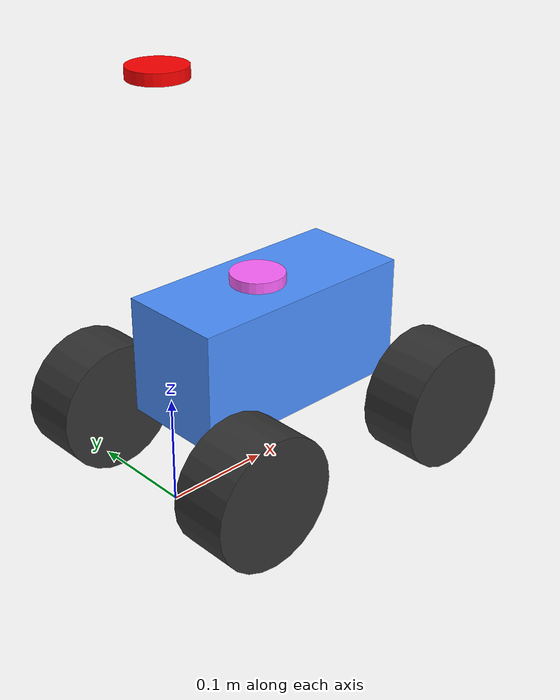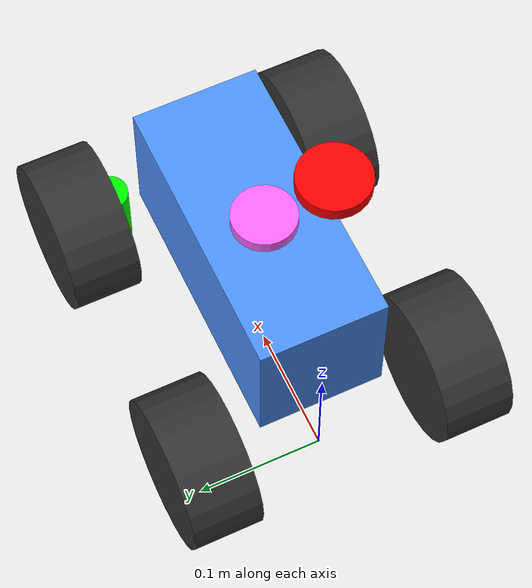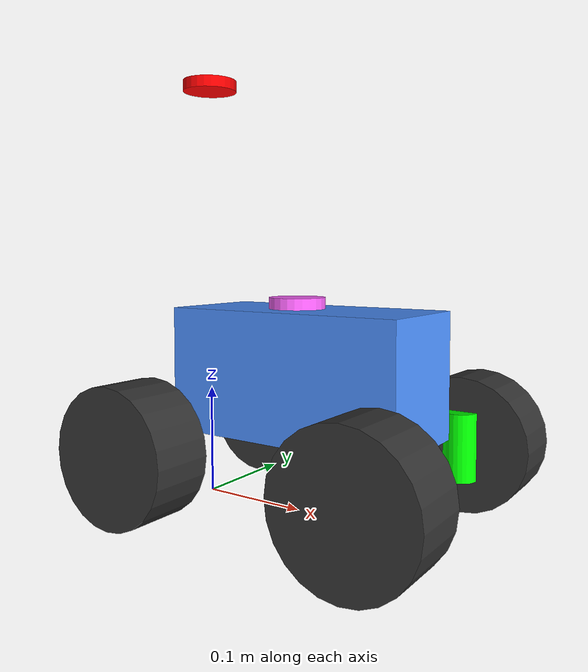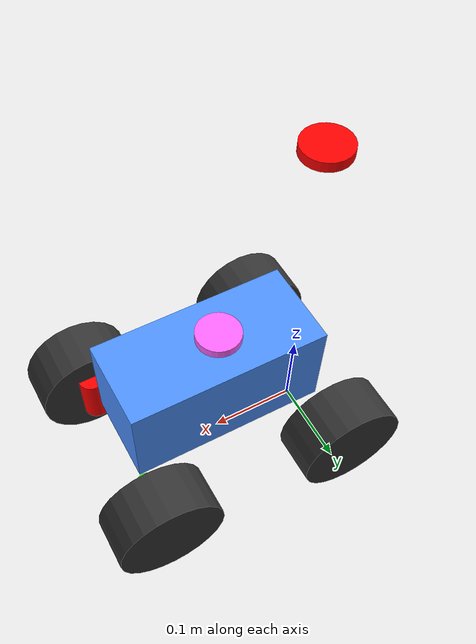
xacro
<?xml version="1.0"?>

<robot name="sensor" xmlns:xacro="http://www.ros.org/wiki/xacro">
  <xacro:property name="height1" value="0.2" />
  <xacro:property name="width" value="0.2" />

  <xacro:property name="wheelbase" value="0.222" />
  <xacro:property name="width" value="0.100" />
  <xacro:property name="height" value="0.110" />
  <xacro:property name="ground_offset" value="0.070" />                 <!-- box model z_distancec above ground-->

  <xacro:property name="wheel_offset" value="0.025" />
  <xacro:property name="wheel_radius" value="0.06" />
  <xacro:property name="wheel_length" value="0.055" />

  <xacro:property name="laser_distance_from_base_link" value="0.275" /> <!-- along x-axis-->
  <xacro:property name="laser_height" value="0.05" />
  <xacro:property name="laser_radius" value="0.026" />

  <xacro:property name="imu_distance_from_base_link" value="0.1" />     <!-- along x-axis-->
  <xacro:property name="imu_height" value="0.01" />
  <xacro:property name="imu_radius" value="0.025" />

  <xacro:property name="gps_distance_from_base_link" value="0.0" />     <!-- along x-axis-->
  <xacro:property name="gps_distance_from_platform" value="0.2" />      <!-- along z-axis -->
  <xacro:property name="gps_model_height" value="0.01" />
  <xacro:property name="gps_model_radius" value="0.025" />

  <material name="black">
    <color rgba="0.2 0.2 0.2 1"/>
  </material>

  <material name="blue">
    <color rgba="0.3 0.57 1 1"/>
  </material>

  <material name="red">
    <color rgba="1 0 0 1"/>
  </material>

  <material name="orange">
    <color rgba="${255/255} ${153/255} ${51/255} 1.0"/>
  </material>

  <material name="green">
    <color rgba="${0/255} ${255/255} ${0/255} 1.0"/>
  </material>

  <material name="magenta">
    <color rgba="${255/255} ${102/255} ${255/255} 1.0"/>
  </material>

 <!-- Used for fixing robot to Gazebo 'base_link' -->
  ### base link
  <link name="robot_base">
    <visual>
      <origin xyz="${wheelbase/2} 0 ${ground_offset+height/2}"/>    <!-- rectangular platform z_dist above ground-->
      <geometry>
        <box size="${wheelbase} ${width} ${height}"/>
      </geometry>
      <material name="blue"/>
    </visual>
    <collision>
      <origin xyz="${wheelbase/2} 0 ${ground_offset+height/2}"/>    <!-- rectangular platform z_dist above ground-->
      <geometry>
        <box size="${wheelbase} ${width} ${height}"/>
      </geometry>
    </collision>
  </link>

   ### imu
  <joint name="base_to_imu" type="fixed">
    <parent link="robot_base"/>
    <child link="imu_sensor"/>
    <origin xyz="${imu_distance_from_base_link} 0 ${ground_offset+height+(imu_height/2)}"/>
  </joint>

  <link name="imu_sensor">
    <visual>
      <geometry>
        <cylinder radius="${imu_radius}" length="${imu_height}"/>
        <!--mesh filename="package://agbot_0/meshes/sorting_tray_centered.stl" scale="0.001 0.001 0.001"-->
      </geometry>
      <material name="magenta"/>
    </visual>
    <collision>
      <geometry>
        <cylinder radius="${imu_radius}" length="${imu_height}"/>
        <!--mesh filename="package://agbot_0/meshes/sorting_tray_centered.stl" scale="0.001 0.001 0.001"-->
      </geometry>
    </collision>
    <inertial>
      <origin xyz="0 0 0" rpy="0 0 0"/>
      <mass value="1"/>
      <inertia
        ixx="1.0" ixy="0.0" ixz="0.0"
        iyy="1.0" iyz="0.0"
        izz="1.0"/>
    </inertial>
  </link>

    ### gps
  <joint name="base_to_gps" type="fixed">
    <parent link="robot_base"/>
    <child link="gps_sensor"/>
    <origin xyz="${gps_distance_from_base_link} 0 ${ground_offset+height+(gps_model_height/2)+gps_distance_from_platform}"/>
  </joint>

  <link name="gps_sensor">
    <collision>
      <geometry>
        <cylinder radius="${gps_model_radius}" length="${gps_model_height}"/>
      </geometry>
    </collision>
    <visual>
      <geometry>
        <cylinder radius="${gps_model_radius}" length="${gps_model_height}"/>
        <!--mesh filename="package://agbot_0/meshes/sorting_tray_centered.stl" scale="0.001 0.001 0.001"-->
      </geometry>
      <material name="red"/>
    </visual>
    <inertial>
      <origin xyz="0 0 0" rpy="0 0 0"/>
      <mass value="1"/>
      <inertia
        ixx="1.0" ixy="0.0" ixz="0.0"
        iyy="1.0" iyz="0.0"
        izz="1.0"/>
    </inertial>
  </link>

  ### Back left wheel
  <joint name="base_to_back_left_wheel" type="continuous">
    <parent link="robot_base"/>
    <child link="back_left_wheel"/>
    <origin xyz="0 ${(wheel_length+width)/2+wheel_offset} ${wheel_radius}"/>
    <axis xyz="0 1 0"/>
  </joint>

  <link name="back_left_wheel">
    <visual>
      <geometry>
        <cylinder radius="${wheel_radius}" length="${wheel_length}"/>
      </geometry>
      <material name="black"/>
      <origin rpy="${pi/2} 0 0"/>
    </visual>
    <collision>
      <geometry>
        <cylinder radius="${wheel_radius}" length="${wheel_length}"/>
      </geometry>
      <material name="black"/>
      <origin rpy="${pi/2} 0 0"/>
    </collision>
    <inertial>
      <origin xyz="0 0 0" rpy="0 0 0"/>
      <mass value="1"/>
      <inertia
        ixx="1.0" ixy="0.0" ixz="0.0"
        iyy="1.0" iyz="0.0"
        izz="1.0"/>
    </inertial>
  </link>

    ### Back right wheel
  <joint name="base_to_back_right_wheel" type="continuous">
    <parent link="robot_base"/>
    <child link="back_right_wheel"/>
    <origin xyz="0 ${-(wheel_length+width)/2-wheel_offset} ${wheel_radius}"/>
    <axis xyz="0 1 0"/>
  </joint>

  <link name="back_right_wheel">
    <visual>
      <geometry>
        <cylinder radius="${wheel_radius}" length="${wheel_length}"/>
      </geometry>
      <material name="black"/>
      <origin rpy="${pi/2} 0 0"/>
    </visual>
    <collision>
      <geometry>
        <cylinder radius="${wheel_radius}" length="${wheel_length}"/>
      </geometry>
      <material name="black"/>
      <origin rpy="${pi/2} 0 0"/>
    </collision>
    <inertial>
      <origin xyz="0 0 0" rpy="0 0 0"/>
      <mass value="1"/>
      <inertia
        ixx="1.0" ixy="0.0" ixz="0.0"
        iyy="1.0" iyz="0.0"
        izz="1.0"/>
    </inertial>
  </link>

<!-- Front left wheel description -->
  ### base to
  ### front left wheel steering hinge joint (this pivots the wheel direction)
  <joint name="base_to_front_left_hinge" type="fixed"> ## fixed type for testing
    <parent link="robot_base"/>
    <child link="front_left_hinge"/>
    <origin xyz="${wheelbase} ${(width)/2+wheel_offset} ${wheel_radius}"/>
    <axis xyz="0 0 1"/>
  </joint>

  ### front left steering hinge link
  <link name="front_left_hinge">
     <visual>
      <geometry>
        <cylinder radius="${wheel_radius/4}" length="${wheel_radius}"/>
      </geometry>
      <material name="green"/>
      <origin rpy="0 0 0"/>
    </visual>
    <collision>
      <geometry>
        <cylinder radius="${wheel_radius}" length="${wheel_length}"/>
      </geometry>
      <material name="black"/>
      <origin rpy="${pi/2} 0 0"/>
    </collision>
    <inertial>
      <origin xyz="0 0 0" rpy="0 0 0"/>
      <mass value="1"/>
      <inertia
        ixx="1.0" ixy="0.0" ixz="0.0"
        iyy="1.0" iyz="0.0"
        izz="1.0"/>
    </inertial>
  </link>

  ### left wheel steering hinge to
  ### left wheel joint (this joint allows the wheel to roll)
  <joint name="front_left_hinge_to_wheel" type="continuous">
    <parent link="front_left_hinge"/>
    <child link="front_left_wheel"/>
    <axis xyz="0 1 0"/>
    <origin xyz="0 ${(wheel_length)/2} 0"/>
  </joint>

  ### front left wheel visual
  <link name="front_left_wheel">
    <visual>
      <geometry>
        <cylinder radius="${wheel_radius}" length="${wheel_length}"/>
      </geometry>
      <material name="black"/>
      <origin rpy="${pi/2} 0 0" xyz="0 0 0"/>
    </visual>
    <collision>
      <geometry>
        <cylinder radius="${wheel_radius}" length="${wheel_length}"/>
      </geometry>
      <material name="black"/>
      <origin rpy="${pi/2} 0 0"/>
    </collision>
    <inertial>
      <origin xyz="0 0 0" rpy="0 0 0"/>
      <mass value="1"/>
      <inertia
        ixx="1.0" ixy="0.0" ixz="0.0"
        iyy="1.0" iyz="0.0"
        izz="1.0"/>
    </inertial>
  </link>

<!--Front Right wheel description-->
  ### base to
  ### front right wheel steering hinge joint (this pivots the wheel direction)
  <joint name="base_to_front_right_hinge" type="fixed"> ## fixed type for testing
    <parent link="robot_base"/>
    <child link="front_right_hinge"/>
    <origin xyz="${wheelbase} ${-(width)/2-wheel_offset} ${wheel_radius}"/>
    <axis xyz="0 0 1"/>
  </joint>

### front right steering hinge link
  <link name="front_right_hinge">
     <visual>
      <geometry>
        <cylinder radius="${wheel_radius/4}" length="${wheel_radius}"/>
      </geometry>
      <material name="red"/>
      <origin rpy="0 0 0"/>
    </visual>
    <collision>
      <geometry>
        <cylinder radius="${wheel_radius}" length="${wheel_length}"/>
      </geometry>
      <material name="black"/>
      <origin rpy="${pi/2} 0 0"/>
    </collision>
    <inertial>
      <origin xyz="0 0 0" rpy="0 0 0"/>
      <mass value="1"/>
      <inertia
        ixx="1.0" ixy="0.0" ixz="0.0"
        iyy="1.0" iyz="0.0"
        izz="1.0"/>
    </inertial>
  </link>

  ### right wheel steering hinge to
  ### right wheel joint (this joint allows the wheel to roll)
  <joint name="front_right_hinge_to_wheel" type="continuous">
    <parent link="front_right_hinge"/>
    <child link="front_right_wheel"/>
    <axis xyz="0 1 0"/>
    <origin xyz="0 ${-(wheel_length)/2} 0"/>
  </joint>

  ### front right wheel link/visual
  <link name="front_right_wheel">
    <visual>
      <geometry>
        <cylinder radius="${wheel_radius}" length="${wheel_length}"/>
      </geometry>
      <material name="black"/>
      <origin rpy="${pi/2} 0 0" xyz="0 0 0" />
    </visual>
    <collision>
      <geometry>
        <cylinder radius="${wheel_radius}" length="${wheel_length}"/>
      </geometry>
      <material name="black"/>
      <origin rpy="${pi/2} 0 0"/>
    </collision>
    <inertial>
      <origin xyz="0 0 0" rpy="0 0 0"/>
      <mass value="1"/>
      <inertia
        ixx="1.0" ixy="0.0" ixz="0.0"
        iyy="1.0" iyz="0.0"
        izz="1.0"/>
    </inertial>
  </link>

 <gazebo reference="sensor">
    <material>Gazebo/Orange</material>
  </gazebo>

  <gazebo>
    <plugin name="imu_plugin" filename="libgazebo_ros_imu.so">
      <alwaysOn>true</alwaysOn>
      <bodyName>imu_sensor</bodyName>
      <frameName>imu_sensor</frameName>
      <topicName>/imu/data</topicName>
      <serviceName>imu_service</serviceName>
      <gaussianNoise>0.0</gaussianNoise>
      <updateRate>20.0</updateRate>
    </plugin>

    <plugin name="gazebo_ros_gps" filename="libhector_gazebo_ros_gps.so">
        <updateRate>4.0</updateRate>
        <bodyName>gps_sensor</bodyName>
        <frameId>gps_sensor</frameId>
        <topicName>/gps/fix</topicName>
        <velocityTopicName>/gps/fix_velocity</velocityTopicName>
        <referenceLatitude>39.78020</referenceLatitude>
        <referenceLongitude>-86.16289</referenceLongitude>
        <referenceHeading>90</referenceHeading>
        <referenceAltitude>10</referenceAltitude>
        <offset>0 0 0</offset>
        <drift>0.001 0.001 0.001</drift>
        <gaussianNoise>5.0 5.0 5.0</gaussianNoise>
        <velocityDrift>0.001 0.001 0.001</velocityDrift>
        <velocityGaussianNoise>0.5 0.5 0.5</velocityGaussianNoise>
    </plugin>
  </gazebo>

</robot>
